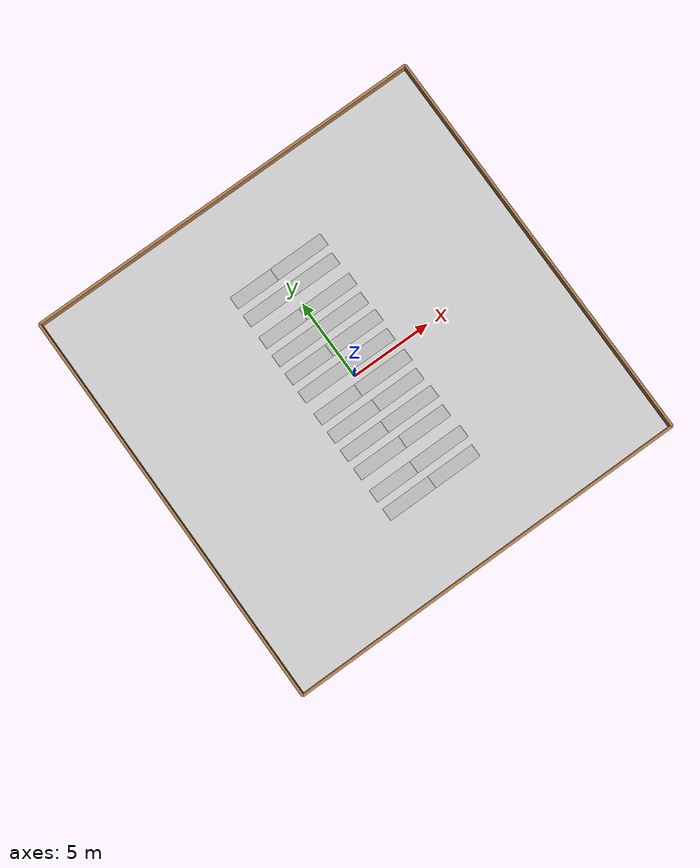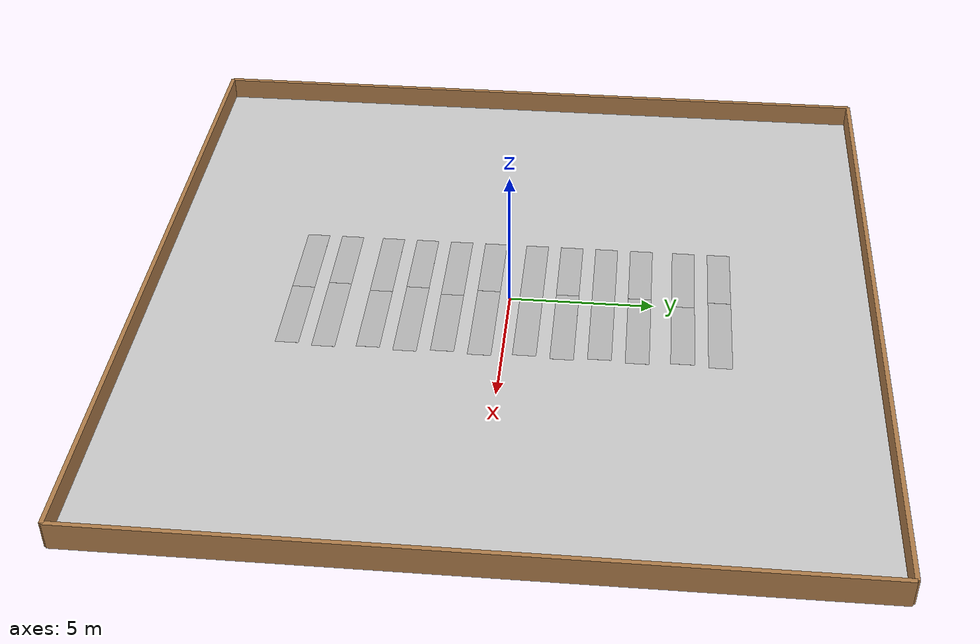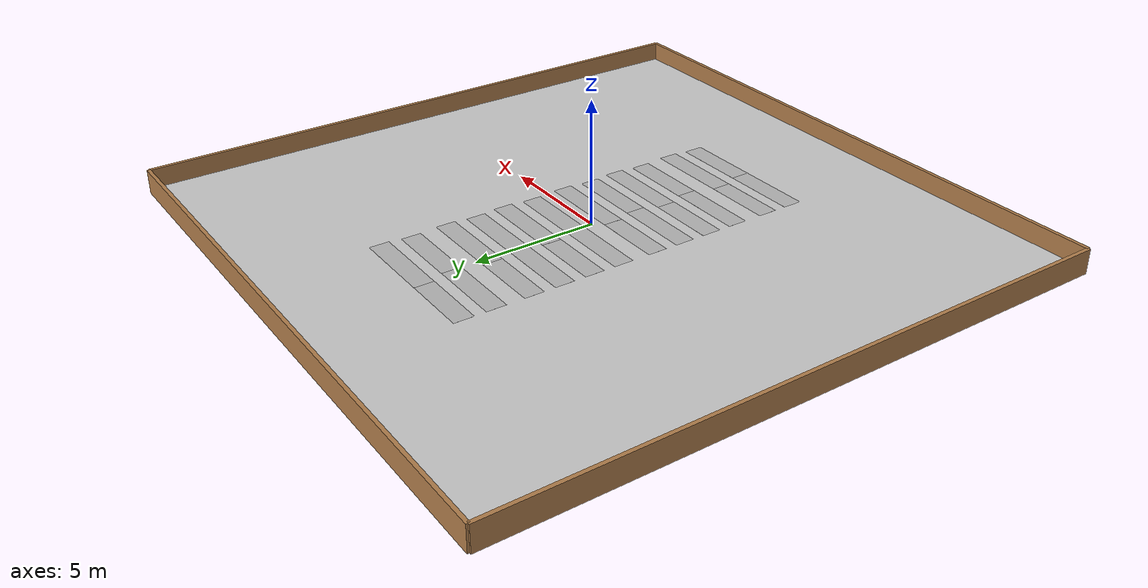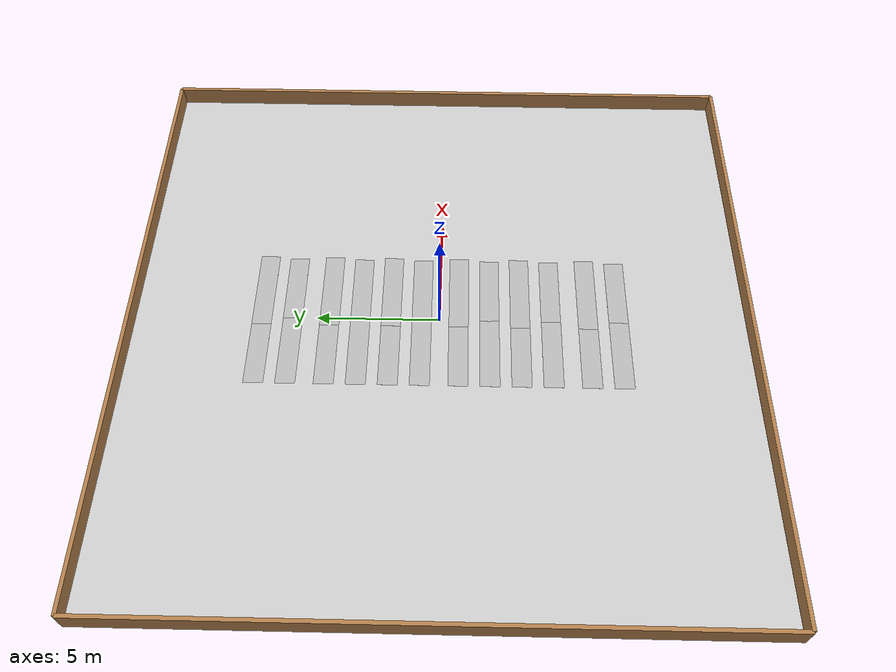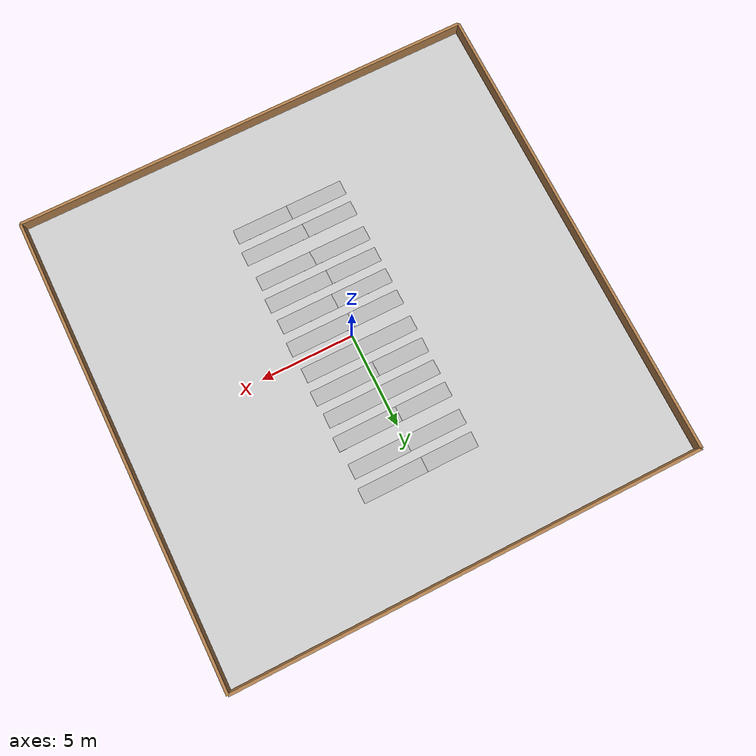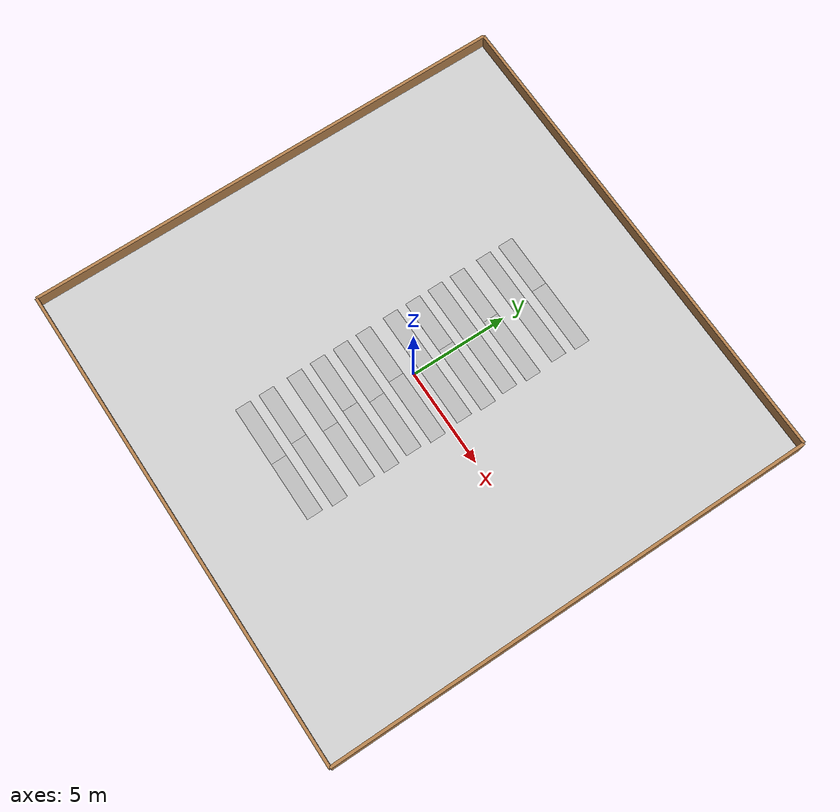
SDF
<sdf version='1.6'>
  <world name='default'>
    <include>
      <uri>model://sun</uri>
    </include>
    <include>
      <uri>model://cmp9767m_ground_3</uri>
    </include>
    <include>
      <uri>model://cmp9767m_plant_textures</uri>
      <pose>0 0 0 0 0 0 </pose>
      <name>rows_1</name>
    </include>
    <include>
      <uri>model://cmp9767m_plant_textures</uri>
      <pose>0.0 -5.25 0.0 0 0 0</pose>
      <name>rows_2</name>
    </include>
    <include>
      <uri>model://cmp9767m_plant_textures</uri>
      <pose>0.0 5.25 0.0 0 0 0</pose>
      <name>rows_3</name>
    </include>
    <include>
      <uri>model://cmp9767m_enclosure</uri>
    </include>
    <physics type="ode">
        <real_time_update_rate>200</real_time_update_rate>
        <real_time_factor>1</real_time_factor>
        <max_step_size>0.005</max_step_size>
    </physics>
    <gravity>0 0 -9.8</gravity>
  </world>
</sdf>

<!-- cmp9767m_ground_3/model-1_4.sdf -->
<sdf version="1.4">
<model name="cmp9767m_ground_3">
  <static>true</static>
    <link name="dirt">
      <collision name="collision">
        <geometry>
          <plane>
            <normal>0 0 1</normal>
            <size>25 25</size>
          </plane>
        </geometry>
        <surface>
          <friction>
            <ode>
              <mu>Inf</mu>
              <mu2>Inf</mu2>
            </ode>
          </friction>
        </surface>
      </collision>
      <visual name="visual">
        <cast_shadows>false</cast_shadows>
        <geometry>
          <plane>
            <normal>0 0 1</normal>
            <size>25 25</size>
          </plane>
        </geometry>
        <material>
          <script>
            <uri>model://cmp9767m_ground_3/materials/scripts</uri>
            <uri>model://cmp9767m_ground_3/materials/textures</uri>
            <name>cmp9767m_ground_3/dirt</name>
          </script>
        </material>
      </visual>
    </link>
  </model>
</sdf>

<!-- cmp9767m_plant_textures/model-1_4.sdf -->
<sdf version="1.4">
  <model name="cmp9767m_plant_textures">
  <static>true</static>
    <link name="texture_1_1">
      <pose frame=''>-1.540 -2.0 0.025 0 -0 0</pose>
      <collision name="collision">
        <geometry>
          <plane>
            <normal>0 0 1</normal>
            <size>3.076 0.793</size>
          </plane>
        </geometry>
        <surface>
          <friction>
            <ode>
              <mu>100</mu>
              <mu2>50</mu2>
            </ode>
          </friction>
        </surface>
      </collision>
      <visual name="visual">
        <cast_shadows>false</cast_shadows>
        <geometry>
          <plane>
            <normal>0 0 1</normal>
            <size>3.076 0.793</size>
          </plane>
        </geometry>
        <material>
          <script>
            <uri>model://cmp9767m_plant_textures/materials/scripts</uri>
            <uri>model://cmp9767m_plant_textures/materials/textures</uri>
            <name>cmp9767m_plant_textures/texture_1</name>
          </script>
        </material>
      </visual>
    </link>

    <link name="texture_1_2">
      <pose frame=''>1.50 -2.0 0.025 0 -0 0</pose>
      <collision name="collision">
        <geometry>
          <plane>
            <normal>0 0 1</normal>
            <size>3.040 0.793</size>
          </plane>
        </geometry>
        <surface>
          <friction>
            <ode>
              <mu>100</mu>
              <mu2>50</mu2>
            </ode>
          </friction>
        </surface>
      </collision>
      <visual name="visual">
        <cast_shadows>false</cast_shadows>
        <geometry>
          <plane>
            <normal>0 0 1</normal>
            <size>3.040 0.793</size>
          </plane>
        </geometry>
        <material>
          <script>
            <uri>model://cmp9767m_plant_textures/materials/scripts</uri>
            <uri>model://cmp9767m_plant_textures/materials/textures</uri>
            <name>cmp9767m_plant_textures/texture_2</name>
          </script>
        </material>
      </visual>
    </link>

    <link name="texture_2_1">
      <pose frame=''>-1.699 -0.75 0.025 0 -0 0</pose>
      <collision name="collision">
        <geometry>
          <plane>
            <normal>0 0 1</normal>
            <size>2.759 0.793</size>
          </plane>
        </geometry>
        <surface>
          <friction>
            <ode>
              <mu>100</mu>
              <mu2>50</mu2>
            </ode>
          </friction>
        </surface>
      </collision>
      <visual name="visual">
        <cast_shadows>false</cast_shadows>
        <geometry>
          <plane>
            <normal>0 0 1</normal>
            <size>2.759 0.793</size>
          </plane>
        </geometry>
        <material>
          <script>
            <uri>model://cmp9767m_plant_textures/materials/scripts</uri>
            <uri>model://cmp9767m_plant_textures/materials/textures</uri>
            <name>cmp9767m_plant_textures/texture_3</name>
          </script>
        </material>
      </visual>
    </link>

    <link name="texture_2_2">
      <pose frame=''>1.399 -0.75 0.025 0 -0 0</pose>
      <collision name="collision">
        <geometry>
          <plane>
            <normal>0 0 1</normal>
            <size>3.436 0.793</size>
          </plane>
        </geometry>
        <surface>
          <friction>
            <ode>
              <mu>100</mu>
              <mu2>50</mu2>
            </ode>
          </friction>
        </surface>
      </collision>
      <visual name="visual">
        <cast_shadows>false</cast_shadows>
        <geometry>
          <plane>
            <normal>0 0 1</normal>
            <size>3.436 0.793</size>
          </plane>
        </geometry>
        <material>
          <script>
            <uri>model://cmp9767m_plant_textures/materials/scripts</uri>
            <uri>model://cmp9767m_plant_textures/materials/textures</uri>
            <name>cmp9767m_plant_textures/texture_4</name>
          </script>
        </material>
      </visual>
    </link>

    <link name="texture_3_1">
      <pose frame=''>-1.540 0.75 0.025 0 -0 3.14</pose>
      <collision name="collision">
        <geometry>
          <plane>
            <normal>0 0 1</normal>
            <size>3.076 0.793</size>
          </plane>
        </geometry>
        <surface>
          <friction>
            <ode>
              <mu>100</mu>
              <mu2>50</mu2>
            </ode>
          </friction>
        </surface>
      </collision>
      <visual name="visual">
        <cast_shadows>false</cast_shadows>
        <geometry>
          <plane>
            <normal>0 0 1</normal>
            <size>3.076 0.793</size>
          </plane>
        </geometry>
        <material>
          <script>
            <uri>model://cmp9767m_plant_textures/materials/scripts</uri>
            <uri>model://cmp9767m_plant_textures/materials/textures</uri>
            <name>cmp9767m_plant_textures/texture_1</name>
          </script>
        </material>
      </visual>
    </link>

    <link name="texture_3_2">
      <pose frame=''>1.50 0.75 0.025 0 -0 3.14</pose>
      <collision name="collision">
        <geometry>
          <plane>
            <normal>0 0 1</normal>
            <size>3.040 0.793</size>
          </plane>
        </geometry>
        <surface>
          <friction>
            <ode>
              <mu>100</mu>
              <mu2>50</mu2>
            </ode>
          </friction>
        </surface>
      </collision>
      <visual name="visual">
        <cast_shadows>false</cast_shadows>
        <geometry>
          <plane>
            <normal>0 0 1</normal>
            <size>3.040 0.793</size>
          </plane>
        </geometry>
        <material>
          <script>
            <uri>model://cmp9767m_plant_textures/materials/scripts</uri>
            <uri>model://cmp9767m_plant_textures/materials/textures</uri>
            <name>cmp9767m_plant_textures/texture_2</name>
          </script>
        </material>
      </visual>
    </link>

    <link name="texture_4_1">
      <pose frame=''>-1.699 2.0 0.025 0 -0 3.14</pose>
      <collision name="collision">
        <geometry>
          <plane>
            <normal>0 0 1</normal>
            <size>2.759 0.793</size>
          </plane>
        </geometry>
        <surface>
          <friction>
            <ode>
              <mu>100</mu>
              <mu2>50</mu2>
            </ode>
          </friction>
        </surface>
      </collision>
      <visual name="visual">
        <cast_shadows>false</cast_shadows>
        <geometry>
          <plane>
            <normal>0 0 1</normal>
            <size>2.759 0.793</size>
          </plane>
        </geometry>
        <material>
          <script>
            <uri>model://cmp9767m_plant_textures/materials/scripts</uri>
            <uri>model://cmp9767m_plant_textures/materials/textures</uri>
            <name>cmp9767m_plant_textures/texture_3</name>
          </script>
        </material>
      </visual>
    </link>

    <link name="texture_4_2">
      <pose frame=''>1.399 2.0 0.025 0 -0 3.14</pose>
      <collision name="collision">
        <geometry>
          <plane>
            <normal>0 0 1</normal>
            <size>3.436 0.793</size>
          </plane>
        </geometry>
        <surface>
          <friction>
            <ode>
              <mu>100</mu>
              <mu2>50</mu2>
            </ode>
          </friction>
        </surface>
      </collision>
      <visual name="visual">
        <cast_shadows>false</cast_shadows>
        <geometry>
          <plane>
            <normal>0 0 1</normal>
            <size>3.436 0.793</size>
          </plane>
        </geometry>
        <material>
          <script>
            <uri>model://cmp9767m_plant_textures/materials/scripts</uri>
            <uri>model://cmp9767m_plant_textures/materials/textures</uri>
            <name>cmp9767m_plant_textures/texture_4</name>
          </script>
        </material>
      </visual>
    </link>
  </model>
</sdf>

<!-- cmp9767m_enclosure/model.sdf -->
<sdf version='1.6'>
  <model name='cmp9767m_enclosure'>
    <link name='Wall_0'>
      <pose frame=''>0 12.5 0 0 -0 0</pose>
      <self_collide>0</self_collide>
      <enable_wind>0</enable_wind>
      <kinematic>0</kinematic>
      <gravity>1</gravity>
      <inertial>
        <mass>1</mass>
        <pose frame=''>0 0 0 0 -0 0</pose>
        <inertia>
          <ixx>1</ixx>
          <ixy>0</ixy>
          <ixz>0</ixz>
          <iyy>1</iyy>
          <iyz>0</iyz>
          <izz>1</izz>
        </inertia>
      </inertial>
      <visual name='Wall_0_Visual'>
        <pose frame=''>0 0 0.25 0 -0 0</pose>
        <geometry>
          <box>
            <size>25.0 0.15 1.0</size>
          </box>
        </geometry>
        <material>
          <script>
            <uri>file://media/materials/scripts/gazebo.material</uri>
            <name>Gazebo/Wood</name>
          </script>
          <ambient>1 1 1 1</ambient>
          <shader type='pixel'>
            <normal_map>__default__</normal_map>
          </shader>
          <diffuse>1 1 1 1</diffuse>
          <specular>0.2 0.2 0.2 1</specular>
          <emissive>0 0 0 1</emissive>
        </material>
        <meta>
          <layer>0</layer>
        </meta>
        <transparency>0</transparency>
        <cast_shadows>1</cast_shadows>
      </visual>
      <collision name='Wall_0_Collision'>
        <laser_retro>0</laser_retro>
        <max_contacts>10</max_contacts>
        <pose frame=''>0 0 0.25 0 -0 0</pose>
        <geometry>
          <box>
            <size>25.0 0.15 1.0</size>
          </box>
        </geometry>
        <surface>
          <friction>
            <ode>
              <mu>1</mu>
              <mu2>1</mu2>
              <fdir1>0 0 0</fdir1>
              <slip1>0</slip1>
              <slip2>0</slip2>
            </ode>
            <torsional>
              <coefficient>1</coefficient>
              <patch_radius>0</patch_radius>
              <surface_radius>0</surface_radius>
              <use_patch_radius>1</use_patch_radius>
              <ode>
                <slip>0</slip>
              </ode>
            </torsional>
          </friction>
          <bounce>
            <restitution_coefficient>0</restitution_coefficient>
            <threshold>1e+06</threshold>
          </bounce>
          <contact>
            <collide_without_contact>0</collide_without_contact>
            <collide_without_contact_bitmask>1</collide_without_contact_bitmask>
            <collide_bitmask>1</collide_bitmask>
            <ode>
              <soft_cfm>0</soft_cfm>
              <soft_erp>0.2</soft_erp>
              <kp>1e+13</kp>
              <kd>1</kd>
              <max_vel>0.01</max_vel>
              <min_depth>0</min_depth>
            </ode>
            <bullet>
              <split_impulse>1</split_impulse>
              <split_impulse_penetration_threshold>-0.01</split_impulse_penetration_threshold>
              <soft_cfm>0</soft_cfm>
              <soft_erp>0.2</soft_erp>
              <kp>1e+13</kp>
              <kd>1</kd>
            </bullet>
          </contact>
        </surface>
      </collision>
    </link>
    <link name='Wall_1'>
      <pose frame=''>0 -12.5 0 0 -0 0</pose>
      <self_collide>0</self_collide>
      <enable_wind>0</enable_wind>
      <kinematic>0</kinematic>
      <gravity>1</gravity>
      <inertial>
        <mass>1</mass>
        <pose frame=''>0 0 0 0 -0 0</pose>
        <inertia>
          <ixx>1</ixx>
          <ixy>0</ixy>
          <ixz>0</ixz>
          <iyy>1</iyy>
          <iyz>0</iyz>
          <izz>1</izz>
        </inertia>
      </inertial>
      <visual name='Wall_1_Visual'>
        <pose frame=''>0 0 0.25 0 -0 0</pose>
        <geometry>
          <box>
            <size>25.0 0.15 1.0</size>
          </box>
        </geometry>
        <material>
          <script>
            <uri>file://media/materials/scripts/gazebo.material</uri>
            <name>Gazebo/Wood</name>
          </script>
          <ambient>1 1 1 1</ambient>
          <shader type='pixel'>
            <normal_map>__default__</normal_map>
          </shader>
          <diffuse>1 1 1 1</diffuse>
          <specular>0.2 0.2 0.2 1</specular>
          <emissive>0 0 0 1</emissive>
        </material>
        <meta>
          <layer>0</layer>
        </meta>
        <transparency>0</transparency>
        <cast_shadows>1</cast_shadows>
      </visual>
      <collision name='Wall_1_Collision'>
        <laser_retro>0</laser_retro>
        <max_contacts>10</max_contacts>
        <pose frame=''>0 0 0.25 0 -0 0</pose>
        <geometry>
          <box>
            <size>25.0 0.15 1.0</size>
          </box>
        </geometry>
        <surface>
          <friction>
            <ode>
              <mu>1</mu>
              <mu2>1</mu2>
              <fdir1>0 0 0</fdir1>
              <slip1>0</slip1>
              <slip2>0</slip2>
            </ode>
            <torsional>
              <coefficient>1</coefficient>
              <patch_radius>0</patch_radius>
              <surface_radius>0</surface_radius>
              <use_patch_radius>1</use_patch_radius>
              <ode>
                <slip>0</slip>
              </ode>
            </torsional>
          </friction>
          <bounce>
            <restitution_coefficient>0</restitution_coefficient>
            <threshold>1e+06</threshold>
          </bounce>
          <contact>
            <collide_without_contact>0</collide_without_contact>
            <collide_without_contact_bitmask>1</collide_without_contact_bitmask>
            <collide_bitmask>1</collide_bitmask>
            <ode>
              <soft_cfm>0</soft_cfm>
              <soft_erp>0.2</soft_erp>
              <kp>1e+13</kp>
              <kd>1</kd>
              <max_vel>0.01</max_vel>
              <min_depth>0</min_depth>
            </ode>
            <bullet>
              <split_impulse>1</split_impulse>
              <split_impulse_penetration_threshold>-0.01</split_impulse_penetration_threshold>
              <soft_cfm>0</soft_cfm>
              <soft_erp>0.2</soft_erp>
              <kp>1e+13</kp>
              <kd>1</kd>
            </bullet>
          </contact>
        </surface>
      </collision>
    </link>
    <link name='Wall_2'>
      <pose frame=''>-12.5 0 0 0 -0 1.57</pose>
      <self_collide>0</self_collide>
      <enable_wind>0</enable_wind>
      <kinematic>0</kinematic>
      <gravity>1</gravity>
      <inertial>
        <mass>1</mass>
        <pose frame=''>0 0 0 0 -0 0</pose>
        <inertia>
          <ixx>1</ixx>
          <ixy>0</ixy>
          <ixz>0</ixz>
          <iyy>1</iyy>
          <iyz>0</iyz>
          <izz>1</izz>
        </inertia>
      </inertial>
      <visual name='Wall_2_Visual'>
        <pose frame=''>0 0 0.25 0 -0 0</pose>
        <geometry>
          <box>
            <size>25.0 0.15 1.0</size>
          </box>
        </geometry>
        <material>
          <script>
            <uri>file://media/materials/scripts/gazebo.material</uri>
            <name>Gazebo/Wood</name>
          </script>
          <ambient>1 1 1 1</ambient>
          <shader type='pixel'>
            <normal_map>__default__</normal_map>
          </shader>
          <diffuse>1 1 1 1</diffuse>
          <specular>0.2 0.2 0.2 1</specular>
          <emissive>0 0 0 1</emissive>
        </material>
        <meta>
          <layer>0</layer>
        </meta>
        <transparency>0</transparency>
        <cast_shadows>1</cast_shadows>
      </visual>
      <collision name='Wall_2_Collision'>
        <laser_retro>0</laser_retro>
        <max_contacts>10</max_contacts>
        <pose frame=''>0 0 0.25 0 -0 0</pose>
        <geometry>
          <box>
            <size>25.0 0.15 1.0</size>
          </box>
        </geometry>
        <surface>
          <friction>
            <ode>
              <mu>1</mu>
              <mu2>1</mu2>
              <fdir1>0 0 0</fdir1>
              <slip1>0</slip1>
              <slip2>0</slip2>
            </ode>
            <torsional>
              <coefficient>1</coefficient>
              <patch_radius>0</patch_radius>
              <surface_radius>0</surface_radius>
              <use_patch_radius>1</use_patch_radius>
              <ode>
                <slip>0</slip>
              </ode>
            </torsional>
          </friction>
          <bounce>
            <restitution_coefficient>0</restitution_coefficient>
            <threshold>1e+06</threshold>
          </bounce>
          <contact>
            <collide_without_contact>0</collide_without_contact>
            <collide_without_contact_bitmask>1</collide_without_contact_bitmask>
            <collide_bitmask>1</collide_bitmask>
            <ode>
              <soft_cfm>0</soft_cfm>
              <soft_erp>0.2</soft_erp>
              <kp>1e+13</kp>
              <kd>1</kd>
              <max_vel>0.01</max_vel>
              <min_depth>0</min_depth>
            </ode>
            <bullet>
              <split_impulse>1</split_impulse>
              <split_impulse_penetration_threshold>-0.01</split_impulse_penetration_threshold>
              <soft_cfm>0</soft_cfm>
              <soft_erp>0.2</soft_erp>
              <kp>1e+13</kp>
              <kd>1</kd>
            </bullet>
          </contact>
        </surface>
      </collision>
    </link>
    <link name='Wall_3'>
      <pose frame=''>12.5 0 0 0 -0 1.57</pose>
      <self_collide>0</self_collide>
      <enable_wind>0</enable_wind>
      <kinematic>0</kinematic>
      <gravity>1</gravity>
      <inertial>
        <mass>1</mass>
        <pose frame=''>0 0 0 0 -0 0</pose>
        <inertia>
          <ixx>1</ixx>
          <ixy>0</ixy>
          <ixz>0</ixz>
          <iyy>1</iyy>
          <iyz>0</iyz>
          <izz>1</izz>
        </inertia>
      </inertial>
      <visual name='Wall_3_Visual'>
        <pose frame=''>0 0 0.25 0 -0 0</pose>
        <geometry>
          <box>
            <size>25.0 0.15 1.0</size>
          </box>
        </geometry>
        <material>
          <script>
            <uri>file://media/materials/scripts/gazebo.material</uri>
            <name>Gazebo/Wood</name>
          </script>
          <ambient>1 1 1 1</ambient>
          <shader type='pixel'>
            <normal_map>__default__</normal_map>
          </shader>
          <diffuse>1 1 1 1</diffuse>
          <specular>0.2 0.2 0.2 1</specular>
          <emissive>0 0 0 1</emissive>
        </material>
        <meta>
          <layer>0</layer>
        </meta>
        <transparency>0</transparency>
        <cast_shadows>1</cast_shadows>
      </visual>
      <collision name='Wall_3_Collision'>
        <laser_retro>0</laser_retro>
        <max_contacts>10</max_contacts>
        <pose frame=''>0 0 0.25 0 -0 0</pose>
        <geometry>
          <box>
            <size>25.0 0.15 1.0</size>
          </box>
        </geometry>
        <surface>
          <friction>
            <ode>
              <mu>1</mu>
              <mu2>1</mu2>
              <fdir1>0 0 0</fdir1>
              <slip1>0</slip1>
              <slip2>0</slip2>
            </ode>
            <torsional>
              <coefficient>1</coefficient>
              <patch_radius>0</patch_radius>
              <surface_radius>0</surface_radius>
              <use_patch_radius>1</use_patch_radius>
              <ode>
                <slip>0</slip>
              </ode>
            </torsional>
          </friction>
          <bounce>
            <restitution_coefficient>0</restitution_coefficient>
            <threshold>1e+06</threshold>
          </bounce>
          <contact>
            <collide_without_contact>0</collide_without_contact>
            <collide_without_contact_bitmask>1</collide_without_contact_bitmask>
            <collide_bitmask>1</collide_bitmask>
            <ode>
              <soft_cfm>0</soft_cfm>
              <soft_erp>0.2</soft_erp>
              <kp>1e+13</kp>
              <kd>1</kd>
              <max_vel>0.01</max_vel>
              <min_depth>0</min_depth>
            </ode>
            <bullet>
              <split_impulse>1</split_impulse>
              <split_impulse_penetration_threshold>-0.01</split_impulse_penetration_threshold>
              <soft_cfm>0</soft_cfm>
              <soft_erp>0.2</soft_erp>
              <kp>1e+13</kp>
              <kd>1</kd>
            </bullet>
          </contact>
        </surface>
      </collision>
    </link>
    <static>1</static>
    <allow_auto_disable>1</allow_auto_disable>
  </model>
</sdf>
